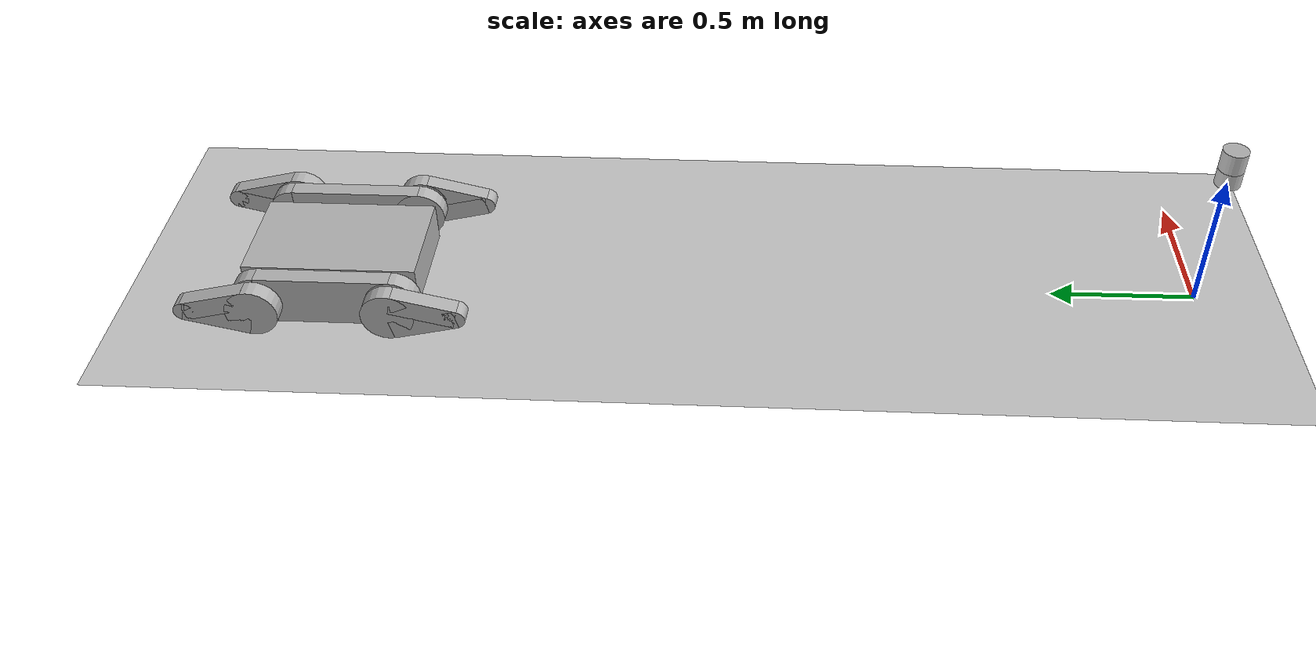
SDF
<?xml version="1.0" ?>
<sdf version="1.5">
  <world name="default">

    <!-- A global light source -->
    <include>
      <uri>model://sun</uri>
    </include>

    <!-- A ground plane -->
    <include>
      <uri>model://ground_plane</uri>
    </include>

    <model name="jaguar">
      <include>
        <uri>model://jaguar</uri>
      </include>
      <!-- Give the base link a unique name -->
      <link name="base">
        <!-- Offset the base by half the lenght of the cylinder -->
        <pose>0 0 0.529335 0 0 0</pose>
        <inertial>
          <mass>1.2</mass>
          <inertia>
            <ixx>0.001087473</ixx>
            <iyy>0.001087473</iyy>
            <izz>0.001092437</izz>
            <ixy>0</ixy>
            <ixz>0</ixz>
            <iyz>0</iyz>
          </inertia>
        </inertial>
        <collision name="base_collision">
          <geometry>
            <cylinder>
              <!-- Radius and length provided by Velodyne -->
              <radius>.04267</radius>
              <length>.05867</length>
            </cylinder>
          </geometry>
        </collision>

        <!-- The visual is mostly a copy of the collision -->
        <visual name="base_visual">
          <geometry>
            <cylinder>
              <radius>.04267</radius>
              <length>.05867</length>
            </cylinder>
          </geometry>
        </visual>
      </link>

      <!-- Give the base link a unique name -->
      <link name="top">
        <!-- Vertically offset the top cylinder by the length of the bottom
            cylinder and half the length of this cylinder. -->
        <pose>0 0 0.595455 0 0 0</pose>
        <!-- Add a ray sensor, and give it a name -->
        <sensor type="ray" name="sensor">
          <pose>0 0 -0.004645 1.5707 0 0</pose>
          <!-- Enable visualization to see the rays in the GUI -->
          <visualize>true</visualize>
          <!-- Set the update rate of the sensor -->
          <update_rate>30</update_rate>
          <ray>
            <!-- The scan element contains the horizontal and vertical beams.
                 We are leaving out the vertical beams for this tutorial. -->
            <scan>
              <!-- The horizontal beams -->
              <horizontal>
                <!-- The velodyne has 32 beams(samples) -->
                <samples>32</samples>
                <resolution>1</resolution>
                <!-- Minimum angle in radians -->
                <min_angle>-0.53529248</min_angle>
                <!-- Maximum angle in radians -->
                <max_angle>0.18622663</max_angle>
              </horizontal>
            </scan>
            <!-- Range defines characteristics of an individual beam -->
            <range>
              <!-- Minimum distance of the beam -->
              <min>0.05</min>
              <!-- Maximum distance of the beam -->
              <max>70</max>
              <!-- Linear resolution of the beam -->
              <resolution>0.02</resolution>
            </range>
            <noise>
              <!-- Use gaussian noise -->
              <type>gaussian</type>
              <mean>0.0</mean>
              <stddev>0.02</stddev>
            </noise>
          </ray>
        </sensor>
        <inertial>
         <mass>0.1</mass>
         <inertia>
           <ixx>0.000090623</ixx>
           <iyy>0.000090623</iyy>
           <izz>0.000091036</izz>
           <ixy>0</ixy>
           <ixz>0</ixz>
           <iyz>0</iyz>
         </inertia>
       </inertial>
        <collision name="top_collision">
          <geometry>
            <cylinder>
              <!-- Radius and length provided by Velodyne -->
              <radius>0.04267</radius>
              <length>0.07357</length>
            </cylinder>
          </geometry>
        </collision>

        <!-- The visual is mostly a copy of the collision -->
        <visual name="top_visual">
          <geometry>
            <cylinder>
              <radius>0.04267</radius>
              <length>0.07357</length>
            </cylinder>
          </geometry>
        </visual>
      </link>
      <joint type="revolute" name="velodyne_j">
        <!-- Position the joint at the bottom of the top link -->
        <pose>0 0 -0.036785 0 0 0</pose>
        <!-- Use the base link as the parent of the joint -->
        <parent>base</parent>
        <!-- Use the top link as the child of the joint -->
        <child>top</child>
        <!-- The axis defines the joint's degree of freedom -->
        <axis>
          <!-- Revolve around the z-axis -->
          <xyz>0 0 1</xyz>
          <!-- Limit refers to the range of motion of the joint -->
          <limit>
            <!-- Use a very large number to indicate a continuous revolution -->
            <lower>-10000000000000000</lower>
            <upper>10000000000000000</upper>
          </limit>
        </axis>
      </joint>
      <joint name='velodyne_base_j' type='fixed'>
        <child>base</child>
        <parent>base_link</parent>
      </joint>
      <plugin name="velodyne_control" filename="/home/alberto/jaguar_plugin/build/libvelodyne_plugin.so">
        <velocity>5</velocity>
      </plugin>
    </model>

  </world>
</sdf>

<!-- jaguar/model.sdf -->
<sdf version="1.5">
        <model name="jaguar">

            <pose frame=''>0 3 0.1 0 0 -1.5708</pose>

            <link name='base_link'>
                <pose frame=''>0 0 0 0 -0 0</pose>
                <inertial>
                    <pose frame=''>0 0 0 1.5708 -0 0</pose>
                    <mass>13.14</mass>
                    <inertia>
                        <ixx>0.17136</ixx>
                        <ixy>0</ixy>
                        <ixz>0</ixz>
                        <iyy>0.544105</iyy>
                        <iyz>0</iyz>
                        <izz>0.415662</izz>
                    </inertia>
                </inertial>
                <collision name='base_link_collision'>
                    <pose frame=''>0 0 0 0 -0 0</pose>
                    <geometry>
                        <box>
                            <size>0.6 0.37 0.140</size>
                        </box>
                    </geometry>
                </collision>
                <visual name='base_link_visual'>
                    <pose frame=''>0 0 0 0 -0 0</pose>
                    <geometry>
                        <box>
                            <size>0.6 0.37 0.140</size>
                        </box>
                    </geometry>
                </visual>
                <self_collide>0</self_collide>
                <gravity>1</gravity>
                <kinematic>0</kinematic>
            </link>

            <link name='left_track'>
                <pose frame=''>0 0.245 0 0 0 0</pose>
                <inertial>
                    <pose frame=''>0 0 0 0 0 0</pose>
                    <mass>6.06</mass>
                    <inertia>
                        <ixx>0.001818</ixx>
                        <ixy>0</ixy>
                        <ixz>0</ixz>
                        <iyy>0.032554</iyy>
                        <iyz>0</iyz>
                        <izz>0.031391</izz>
                    </inertia>
                </inertial>
                <collision name='left_track_collision'>
                    <pose frame=''>0 0 0 1.5708 0 1.5708</pose>
                    <geometry>
                        <box>
                            <size>0.06 0.180 0.46</size>
                        </box>
                    </geometry>
                    <surface>
                        <friction>
                            <ode>
                                <mu>0.7</mu>
                                <mu2>150</mu2>
                                <fdir1>0 1 0</fdir1>
                            </ode>
                        </friction>
                    </surface>
                </collision>
                <collision name='left_track_collision_1'>
                    <pose frame=''>0.23 0 0 1.5708 0 0</pose>
                    <geometry>
                        <cylinder>
                            <length>0.06</length>
                            <radius>0.09</radius>
                        </cylinder>
                    </geometry>
                    <surface>
                        <friction>
                            <ode>
                                <mu>0.7</mu>
                                <mu2>150</mu2>
                                <fdir1>0 1 0</fdir1>
                            </ode>
                        </friction>
                    </surface>
                </collision>
                <collision name='left_track_collision_2'>
                    <pose frame=''>-0.23 0 0 1.5708 0 0</pose>
                    <geometry>
                        <cylinder>
                            <length>0.06</length>
                            <radius>0.09</radius>
                        </cylinder>
                    </geometry>
                    <surface>
                        <friction>
                            <ode>
                                <mu>0.7</mu>
                                <mu2>150</mu2>
                                <fdir1>0 1 0</fdir1>
                            </ode>
                        </friction>
                    </surface>
                </collision>
                <visual name='left_track_visual'>
                    <pose frame=''>0 0 0 1.5708 0 1.5708</pose>
                    <geometry>
                        <box>
                            <size>0.06 0.180 0.46</size>
                        </box>
                    </geometry>
                </visual>
                <visual name='left_track_visual_1'>
                    <pose frame=''>0.23 0 0 1.5708 0 0</pose>
                    <geometry>
                        <cylinder>
                            <length>0.06</length>
                            <radius>0.09</radius>
                        </cylinder>
                    </geometry>
                </visual>
                <visual name='left_track_visual_2'>
                    <pose frame=''>-0.23 0 0 1.5708 0 0</pose>
                    <geometry>
                        <cylinder>
                            <length>0.06</length>
                            <radius>0.09</radius>
                        </cylinder>
                    </geometry>
                </visual>
                <gravity>1</gravity>
                <kinematic>0</kinematic>
            </link>
            <joint name='left_track_j' type='fixed'>
                <child>left_track</child>
                <parent>base_link</parent>
            </joint>

            <link name='right_track'>
                <pose frame=''>0 -0.245 0 0 0 0</pose>
                <inertial>
                    <pose frame=''>0 0 0 0 -0 0</pose>
                    <mass>6.06</mass>
                    <inertia>
                        <ixx>0.001818</ixx>
                        <ixy>0</ixy>
                        <ixz>0</ixz>
                        <iyy>0.032554</iyy>
                        <iyz>0</iyz>
                        <izz>0.031391</izz>
                    </inertia>
                </inertial>
                <collision name='right_track_collision'>
                    <pose frame=''>0 0 0 1.5708 0 1.5708</pose>
                    <geometry>
                        <box>
                            <size>0.06 0.180 0.46</size>
                        </box>
                    </geometry>
                    <surface>
                        <friction>
                            <ode>
                                <mu>0.7</mu>
                                <mu2>150</mu2>
                                <fdir1>0 1 0</fdir1>
                            </ode>
                        </friction>
                    </surface>
                </collision>
                <collision name='right_track_collision_1'>
                    <pose frame=''>0.23 0 0 1.5708 0 0</pose>
                    <geometry>
                        <cylinder>
                            <length>0.06</length>
                            <radius>0.09</radius>
                        </cylinder>
                    </geometry>
                    <surface>
                        <friction>
                            <ode>
                                <mu>0.7</mu>
                                <mu2>150</mu2>
                                <fdir1>0 1 0</fdir1>
                            </ode>
                        </friction>
                    </surface>
                </collision>
                <collision name='right_track_collision_2'>
                    <pose frame=''>-0.23 0 0 1.5708 0 0</pose>
                    <geometry>
                        <cylinder>
                            <length>0.06</length>
                            <radius>0.09</radius>
                        </cylinder>
                    </geometry>
                    <surface>
                        <friction>
                            <ode>
                                <mu>0.7</mu>
                                <mu2>150</mu2>
                                <fdir1>0 1 0</fdir1>
                            </ode>
                        </friction>
                    </surface>
                </collision>
                <visual name='right_track_visual'>
                    <pose frame=''>0 0 0 1.5708 0 1.5708</pose>
                    <geometry>
                        <box>
                            <size>0.06 0.180 0.46</size>
                        </box>
                    </geometry>
                </visual>
                <visual name='right_track_visual_1'>
                    <pose frame=''>0.23 0 0 1.5708 0 0</pose>
                    <geometry>
                        <cylinder>
                            <length>0.06</length>
                            <radius>0.09</radius>
                        </cylinder>
                    </geometry>
                </visual>
                <visual name='right_track_visual_2'>
                    <pose frame=''>-0.23 0 0 1.5708 0 0</pose>
                    <geometry>
                        <cylinder>
                            <length>0.06</length>
                            <radius>0.09</radius>
                        </cylinder>
                    </geometry>
                </visual>
                <gravity>1</gravity>
                <kinematic>0</kinematic>
            </link>
            <joint name='right_track_j' type='fixed'>
                <child>right_track</child>
                <parent>base_link</parent>
            </joint>
            <!--__________________right_rear_arm__________________-->

		    <link name="right_rear_arm">
		      <pose>-0.345 -0.315 0.00 0 0 1.5708</pose>
		      <inertial>
		        <pose>-0.015 0 0 1.57 0 1.57</pose>
		        <mass>1.0</mass>
		        <inertia>
		          <ixx>6.8125e-4</ixx>
		          <ixy>0</ixy>
		          <ixz>0</ixz>
		          <iyy>3.96253e-3</iyy>
		          <iyz>0</iyz>
		          <izz>4.53125e-3</izz>
		        </inertia>
		      </inertial>
		      <visual name="visual">
		        <geometry>
		          <box>
		            <size>.002 .23 .05</size>
		          </box>
		        </geometry>
		        <material>
		          <ambient>0.7 0.7 0.7 1</ambient>
		          <diffuse>0.3 0.3 0.3 1</diffuse>
		          <specular>0.1 0.1 0.1 1</specular>
		          <emissive>0 0 0 0</emissive>
		        </material>
		      </visual>

    		      <collision name="collision_right_rear_arm_wheel_1">
                    <pose>-0 -0.115 0 0 -1.5708 0</pose>
    		        <geometry>
    		          <cylinder>
    		            <radius>.09</radius>
    		            <length>.06</length>
    		          </cylinder>
    		        </geometry>
    		        <surface>
    		          <friction>
    		            <ode>
    		              <mu>0.7</mu>
                          <mu2>150</mu2>
                          <fdir1>0 1 0</fdir1>
    		            </ode>
    		          </friction>
    		        </surface>
    		      </collision>

    		      <visual name="visual_right_rear_arm_wheel_1">
                    <pose>-0 -0.115 0 0 -1.5708 0</pose>
    		        <geometry>
    		          <cylinder>
    		            <radius>.09</radius>
    		            <length>.06</length>
    		          </cylinder>
    		        </geometry>
    		      </visual>
    		      <self_collide>0</self_collide>

    		     <collision name="collision_right_rear_arm_wheel_2">
                    <pose>-0 0.115 0 0 -1.5708 0</pose>
    		        <geometry>
    		          <cylinder>
    		            <radius>.035</radius>
    		            <length>.06</length>
    		          </cylinder>
    		        </geometry>
    		        <surface>
    		          <friction>
    		            <ode>
    		              <mu>0.7</mu>
                          <mu2>150</mu2>
                          <fdir1>0 1 0</fdir1>
    		            </ode>
    		          </friction>
    		        </surface>
    		      </collision>

    		      <visual name="visual_right_rear_arm_wheel_2">
                    <pose>-0 0.115 0 0 -1.5708 0</pose>
    		        <geometry>
    		          <cylinder>
    		            <radius>.035</radius>
    		            <length>.06</length>
    		          </cylinder>
    		        </geometry>
    		      </visual>
    		      <self_collide>0</self_collide>

                     <collision name='right_rear_track_collision'>
                        <pose>-0 0.00657 -0.0267021 -1.3293 0 0</pose>
                        <geometry>
                            <box>
                                <size>0.06 0.07 0.2233</size>
                            </box>
                        </geometry>
                        <surface>
                            <friction>
                                <ode>
                                    <mu>0.7</mu>
                                    <mu2>150</mu2>
                                    <fdir1>0 1 0</fdir1>
                                </ode>
                            </friction>
                        </surface>
                    </collision>

                    <visual name='right_rear_track_visual'>
                        <pose>-0 0.00657 0.0267021 1.3293 0 0</pose>
                        <geometry>
                            <box>
                                <size>0.06 0.07 0.2233</size>
                            </box>
                        </geometry>
                    </visual>

                    <collision name='right_rear_track_collision_2'>
                        <pose>-0 0.00657 0.0267021 1.3293 0 0</pose>
                        <geometry>
                            <box>
                                <size>0.06 0.07 0.23</size>
                            </box>
                        </geometry>
                        <surface>
                            <friction>
                                <ode>
                                    <mu>0.7</mu>
                                    <mu2>150</mu2>
                                    <fdir1>0 1 0</fdir1>
                                </ode>
                            </friction>
                        </surface>
                    </collision>

                    <visual name='right_rear_track_visual_2'>
                        <pose>-0 0.00657 -0.0267021 -1.3293 0 0</pose>
                        <geometry>
                            <box>
                                <size>0.06 0.07 0.23</size>
                            </box>
                        </geometry>
                    </visual>
                    <gravity>1</gravity>
                    <kinematic>0</kinematic>-->
            </link>
            <joint name='right_rear_track_j' type='fixed'>
                <pose>0 -0.115 -0.001 0 0 0</pose>
                <child>right_rear_arm</child>
                <parent>base_link</parent>
                <axis>
                    <xyz>1 0 0</xyz>
                    <dynamics>
                        <damping>.5</damping>
                    </dynamics>
                    <limit>
                        <velocity>1</velocity>
                    </limit>
                </axis>
            </joint>

		<!--__________________/right_rear_arm__________________-->

		<!--__________________left_rear_arm__________________-->
		   <link name="left_rear_arm">
              <pose>-0.345 0.315 0.00 0 0 1.5708</pose>
              <inertial>
                <pose>-0.015 0 0 1.57 0 1.57</pose>
                <mass>1.0</mass>
                <inertia>
                  <ixx>6.8125e-4</ixx>
                  <ixy>0</ixy>
                  <ixz>0</ixz>
                  <iyy>3.96253e-3</iyy>
                  <iyz>0</iyz>
                  <izz>4.53125e-3</izz>
                </inertia>
              </inertial>
              <visual name="visual">
                <geometry>
                  <box>
                    <size>.002 .23 .05</size>
                  </box>
                </geometry>
                <material>
                  <ambient>0.7 0.7 0.7 1</ambient>
                  <diffuse>0.3 0.3 0.3 1</diffuse>
                  <specular>0.1 0.1 0.1 1</specular>
                  <emissive>0 0 0 0</emissive>
                </material>
              </visual>

                  <collision name="collision_left_rear_arm_wheel_1">
                    <pose>-0 -0.115 0 0 -1.5708 0</pose>
                    <geometry>
                      <cylinder>
                        <radius>.09</radius>
                        <length>.06</length>
                      </cylinder>
                    </geometry>
                    <surface>
                      <friction>
                        <ode>
                          <mu>0.7</mu>
                          <mu2>150</mu2>
                          <fdir1>0 1 0</fdir1>
                        </ode>
                      </friction>
                    </surface>
                  </collision>

                  <visual name="visual_left_rear_arm_wheel_1">
                    <pose>-0 -0.115 0 0 -1.5708 0</pose>
                    <geometry>
                      <cylinder>
                        <radius>.09</radius>
                        <length>.06</length>
                      </cylinder>
                    </geometry>
                  </visual>
                  <self_collide>0</self_collide>

                 <collision name="collision_left_rear_arm_wheel_2">
                    <pose>-0 0.115 0 0 -1.5708 0</pose>
                    <geometry>
                      <cylinder>
                        <radius>.035</radius>
                        <length>.06</length>
                      </cylinder>
                    </geometry>
                    <surface>
                      <friction>
                        <ode>
                          <mu>0.7</mu>
                          <mu2>150</mu2>
                          <fdir1>0 1 0</fdir1>
                        </ode>
                      </friction>
                    </surface>
                  </collision>

                  <visual name="visual_left_rear_arm_wheel_2">
                    <pose>-0 0.115 0 0 -1.5708 0</pose>
                    <geometry>
                      <cylinder>
                        <radius>.035</radius>
                        <length>.06</length>
                      </cylinder>
                    </geometry>
                  </visual>
                  <self_collide>0</self_collide>

                     <collision name='left_rear_track_collision'>
                        <pose>-0 0.00657 0.0267021 1.3293 0 0</pose>
                        <geometry>
                            <box>
                                <size>0.06 0.07 0.2233</size>
                            </box>
                        </geometry>
                        <surface>
                            <friction>
                                <ode>
                                    <mu>0.7</mu>
                                    <mu2>150</mu2>
                                    <fdir1>0 1 0</fdir1>
                                </ode>
                            </friction>
                        </surface>
                    </collision>

                    <visual name='left_rear_track_visual'>
                        <pose>-0 0.00657 0.0267021 1.3293 0 0</pose>
                        <geometry>
                            <box>
                                <size>0.06 0.07 0.2233</size>
                            </box>
                        </geometry>
                    </visual>

                    <collision name='left_rear_track_collision_2'>
                        <pose>-0 0.00657 -0.0267021 -1.3293 0 0</pose>
                        <geometry>
                            <box>
                                <size>0.06 0.07 0.23</size>
                            </box>
                        </geometry>
                        <surface>
                            <friction>
                                <ode>
                                    <mu>0.7</mu>
                                    <mu2>150</mu2>
                                    <fdir1>0 1 0</fdir1>
                                </ode>
                            </friction>
                        </surface>
                    </collision>

                    <visual name='left_rear_track_visual_2'>
                        <pose>-0 0.00657 -0.0267021 -1.3293 0 0</pose>
                        <geometry>
                            <box>
                                <size>0.06 0.07 0.23</size>
                            </box>
                        </geometry>
                    </visual>
                    <gravity>1</gravity>
                    <kinematic>0</kinematic>-->
            </link>
            <joint name='left_rear_track_j' type='fixed'>
                <pose>0 -0.115 0.001 0 0 0</pose>
                <child>left_rear_arm</child>
                <parent>base_link</parent>
                <axis>
                    <xyz>1 0 0</xyz>
                    <dynamics>
                        <damping>.5</damping>
                    </dynamics>
                    <limit>
                        <velocity>1</velocity>
                    </limit>
                </axis>
            </joint>

		<!--__________________/left_rear_arm__________________-->

		<!--__________________right_front_arm__________________-->
	    	<link name="right_front_arm">
              <pose>0.345 -0.315 0.00 0 0 1.5708</pose>
              <inertial>
                <pose>-0.015 0 0 1.57 0 1.57</pose>
                <mass>1.0</mass>
                <inertia>
                  <ixx>6.8125e-4</ixx>
                  <ixy>0</ixy>
                  <ixz>0</ixz>
                  <iyy>3.96253e-3</iyy>
                  <iyz>0</iyz>
                  <izz>4.53125e-3</izz>
                </inertia>
              </inertial>
              <visual name="visual">
                <geometry>
                  <box>
                    <size>.002 .23 .05</size>
                  </box>
                </geometry>
                <material>
                  <ambient>0.7 0.7 0.7 1</ambient>
                  <diffuse>0.3 0.3 0.3 1</diffuse>
                  <specular>0.1 0.1 0.1 1</specular>
                  <emissive>0 0 0 0</emissive>
                </material>
              </visual>

                  <collision name="collision_right_front_arm_wheel_1">
                    <pose>-0 0.115 0 0 -1.5708 0</pose>
                    <geometry>
                      <cylinder>
                        <radius>.09</radius>
                        <length>.06</length>
                      </cylinder>
                    </geometry>
                    <surface>
                      <friction>
                        <ode>
                          <mu>0.7</mu>
                          <mu2>150</mu2>
                          <fdir1>0 1 0</fdir1>
                        </ode>
                      </friction>
                    </surface>
                  </collision>

                  <visual name="visual_right_front_arm_wheel_1">
                    <pose>-0 0.115 0 0 -1.5708 0</pose>
                    <geometry>
                      <cylinder>
                        <radius>.09</radius>
                        <length>.06</length>
                      </cylinder>
                    </geometry>
                  </visual>
                  <self_collide>0</self_collide>

                 <collision name="collision_right_front_arm_wheel_2">
                    <pose>-0 -0.115 0 0 -1.5708 0</pose>
                    <geometry>
                      <cylinder>
                        <radius>.035</radius>
                        <length>.06</length>
                      </cylinder>
                    </geometry>
                    <surface>
                      <friction>
                        <ode>
                          <mu>0.7</mu>
                          <mu2>150</mu2>
                          <fdir1>0 1 0</fdir1>
                        </ode>
                      </friction>
                    </surface>
                  </collision>

                  <visual name="visual_right_front_arm_wheel_2">
                    <pose>-0 -0.115 0 0 -1.5708 0</pose>
                    <geometry>
                      <cylinder>
                        <radius>.035</radius>
                        <length>.06</length>
                      </cylinder>
                    </geometry>
                  </visual>
                  <self_collide>0</self_collide>

                     <collision name='right_front_track_collision'>
                        <pose>-0 -0.00657 0.0267021 -1.3293 0 0</pose>
                        <geometry>
                            <box>
                                <size>0.06 0.07 0.2233</size>
                            </box>
                        </geometry>
                        <surface>
                            <friction>
                                <ode>
                                    <mu>0.7</mu>
                                    <mu2>150</mu2>
                                    <fdir1>0 1 0</fdir1>
                                </ode>
                            </friction>
                        </surface>
                    </collision>

                    <visual name='right_front_track_visual'>
                        <pose>-0 -0.00657 0.0267021 -1.3293 0 0</pose>
                        <geometry>
                            <box>
                                <size>0.06 0.07 0.2233</size>
                            </box>
                        </geometry>
                    </visual>

                    <collision name='right_front_track_collision_2'>
                        <pose>-0 -0.00657 -0.0267021 1.3293 0 0</pose>
                        <geometry>
                            <box>
                                <size>0.06 0.07 0.23</size>
                            </box>
                        </geometry>
                        <surface>
                            <friction>
                                <ode>
                                    <mu>0.7</mu>
                                    <mu2>150</mu2>
                                    <fdir1>0 1 0</fdir1>
                                </ode>
                            </friction>
                        </surface>
                    </collision>

                    <visual name='right_front_track_visual_2'>
                        <pose>-0 -0.00657 -0.0267021 1.3293 0 0</pose>
                        <geometry>
                            <box>
                                <size>0.06 0.07 0.23</size>
                            </box>
                        </geometry>
                    </visual>
                    <gravity>1</gravity>
                    <kinematic>0</kinematic>-->
            </link>
            <joint name='right_front_track_j' type='fixed'>
                <pose>0 0.115 -0.001 0 0 0</pose>
                <child>right_front_arm</child>
                <parent>base_link</parent>
                <axis>
                    <xyz>1 0 0</xyz>
                    <dynamics>
                        <damping>.5</damping>
                    </dynamics>
                    <limit>
                        <velocity>1</velocity>
                    </limit>
                </axis>
            </joint>
		<!--__________________/right_front_arm__________________-->
		<!--__________________left_front_arm__________________-->
		    <link name="left_front_arm">
              <pose>0.345 0.315 0.00 0 0 1.5708</pose>
              <inertial>
                <pose>-0.015 0 0 1.57 0 1.57</pose>
                <mass>1.0</mass>
                <inertia>
                  <ixx>6.8125e-4</ixx>
                  <ixy>0</ixy>
                  <ixz>0</ixz>
                  <iyy>3.96253e-3</iyy>
                  <iyz>0</iyz>
                  <izz>4.53125e-3</izz>
                </inertia>
              </inertial>
              <visual name="visual">
                <geometry>
                  <box>
                    <size>.002 .23 .05</size>
                  </box>
                </geometry>
                <material>
                  <ambient>0.7 0.7 0.7 1</ambient>
                  <diffuse>0.3 0.3 0.3 1</diffuse>
                  <specular>0.1 0.1 0.1 1</specular>
                  <emissive>0 0 0 0</emissive>
                </material>
              </visual>

                  <collision name="collision_left_front_arm_wheel_1">
                    <pose>-0 0.115 0 0 -1.5708 0</pose>
                    <geometry>
                      <cylinder>
                        <radius>.09</radius>
                        <length>.06</length>
                      </cylinder>
                    </geometry>
                    <surface>
                      <friction>
                        <ode>
                          <mu>0.7</mu>
                          <mu2>150</mu2>
                          <fdir1>0 1 0</fdir1>
                        </ode>
                      </friction>
                    </surface>
                  </collision>

                  <visual name="visual_left_front_arm_wheel_1">
                    <pose>-0 0.115 0 0 -1.5708 0</pose>
                    <geometry>
                      <cylinder>
                        <radius>.09</radius>
                        <length>.06</length>
                      </cylinder>
                    </geometry>
                  </visual>
                  <self_collide>0</self_collide>

                 <collision name="collision_left_front_arm_wheel_2">
                    <pose>-0 -0.115 0 0 -1.5708 0</pose>
                    <geometry>
                      <cylinder>
                        <radius>.035</radius>
                        <length>.06</length>
                      </cylinder>
                    </geometry>
                    <surface>
                      <friction>
                        <ode>
                          <mu>0.7</mu>
                          <mu2>150</mu2>
                          <fdir1>0 1 0</fdir1>
                        </ode>
                      </friction>
                    </surface>
                  </collision>

                  <visual name="visual_left_front_arm_wheel_2">
                    <pose>-0 -0.115 0 0 -1.5708 0</pose>
                    <geometry>
                      <cylinder>
                        <radius>.035</radius>
                        <length>.06</length>
                      </cylinder>
                    </geometry>
                  </visual>
                  <self_collide>0</self_collide>

                     <collision name='left_front_track_collision'>
                        <pose>-0 -0.00657 0.0267021 -1.3293 0 0</pose>
                        <geometry>
                            <box>
                                <size>0.06 0.07 0.2233</size>
                            </box>
                        </geometry>
                        <surface>
                            <friction>
                                <ode>
                                    <mu>0.7</mu>
                                    <mu2>150</mu2>
                                    <fdir1>0 1 0</fdir1>
                                </ode>
                            </friction>
                        </surface>
                    </collision>

                    <visual name='left_front_track_visual'>
                        <pose>-0 -0.00657 0.0267021 -1.3293 0 0</pose>
                        <geometry>
                            <box>
                                <size>0.06 0.07 0.2233</size>
                            </box>
                        </geometry>
                    </visual>

                    <collision name='left_front_track_collision_2'>
                        <pose>-0 -0.00657 -0.0267021 1.3293 0 0</pose>
                        <geometry>
                            <box>
                                <size>0.06 0.07 0.23</size>
                            </box>
                        </geometry>
                        <surface>
                            <friction>
                                <ode>
                                    <mu>0.7</mu>
                                    <mu2>150</mu2>
                                    <fdir1>0 1 0</fdir1>
                                </ode>
                            </friction>
                        </surface>
                    </collision>

                    <visual name='left_front_track_visual_2'>
                        <pose>-0 -0.00657 -0.0267021 1.3293 0 0</pose>
                        <geometry>
                            <box>
                                <size>0.06 0.07 0.23</size>
                            </box>
                        </geometry>
                    </visual>
                    <gravity>1</gravity>
                    <kinematic>0</kinematic>-->
            </link>
            <joint name='left_front_track_j' type='fixed'>
                <pose>0 0.115 0.001 0 0 0</pose>
                <child>left_front_arm</child>
                <parent>base_link</parent>
                <axis>
                    <xyz>1 0 0</xyz>
                    <dynamics>
                        <damping>.5</damping>
                    </dynamics>
                    <limit>
                        <velocity>1</velocity>
                    </limit>
                </axis>
            </joint>
  	</model>
</sdf>
